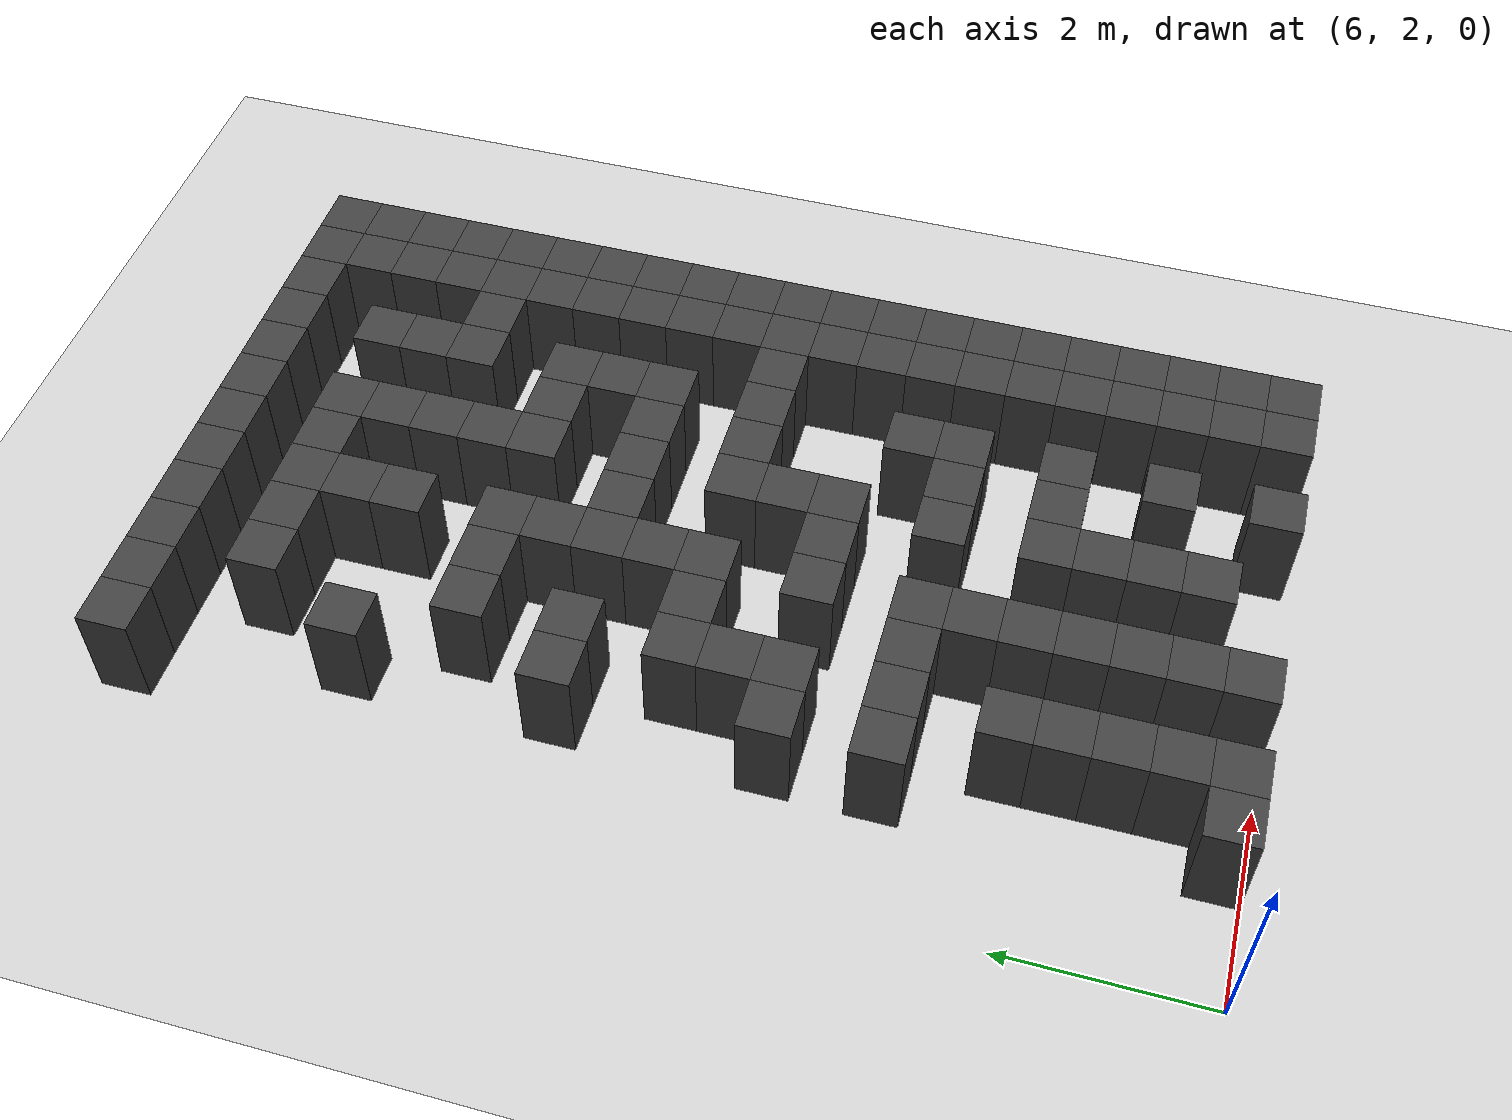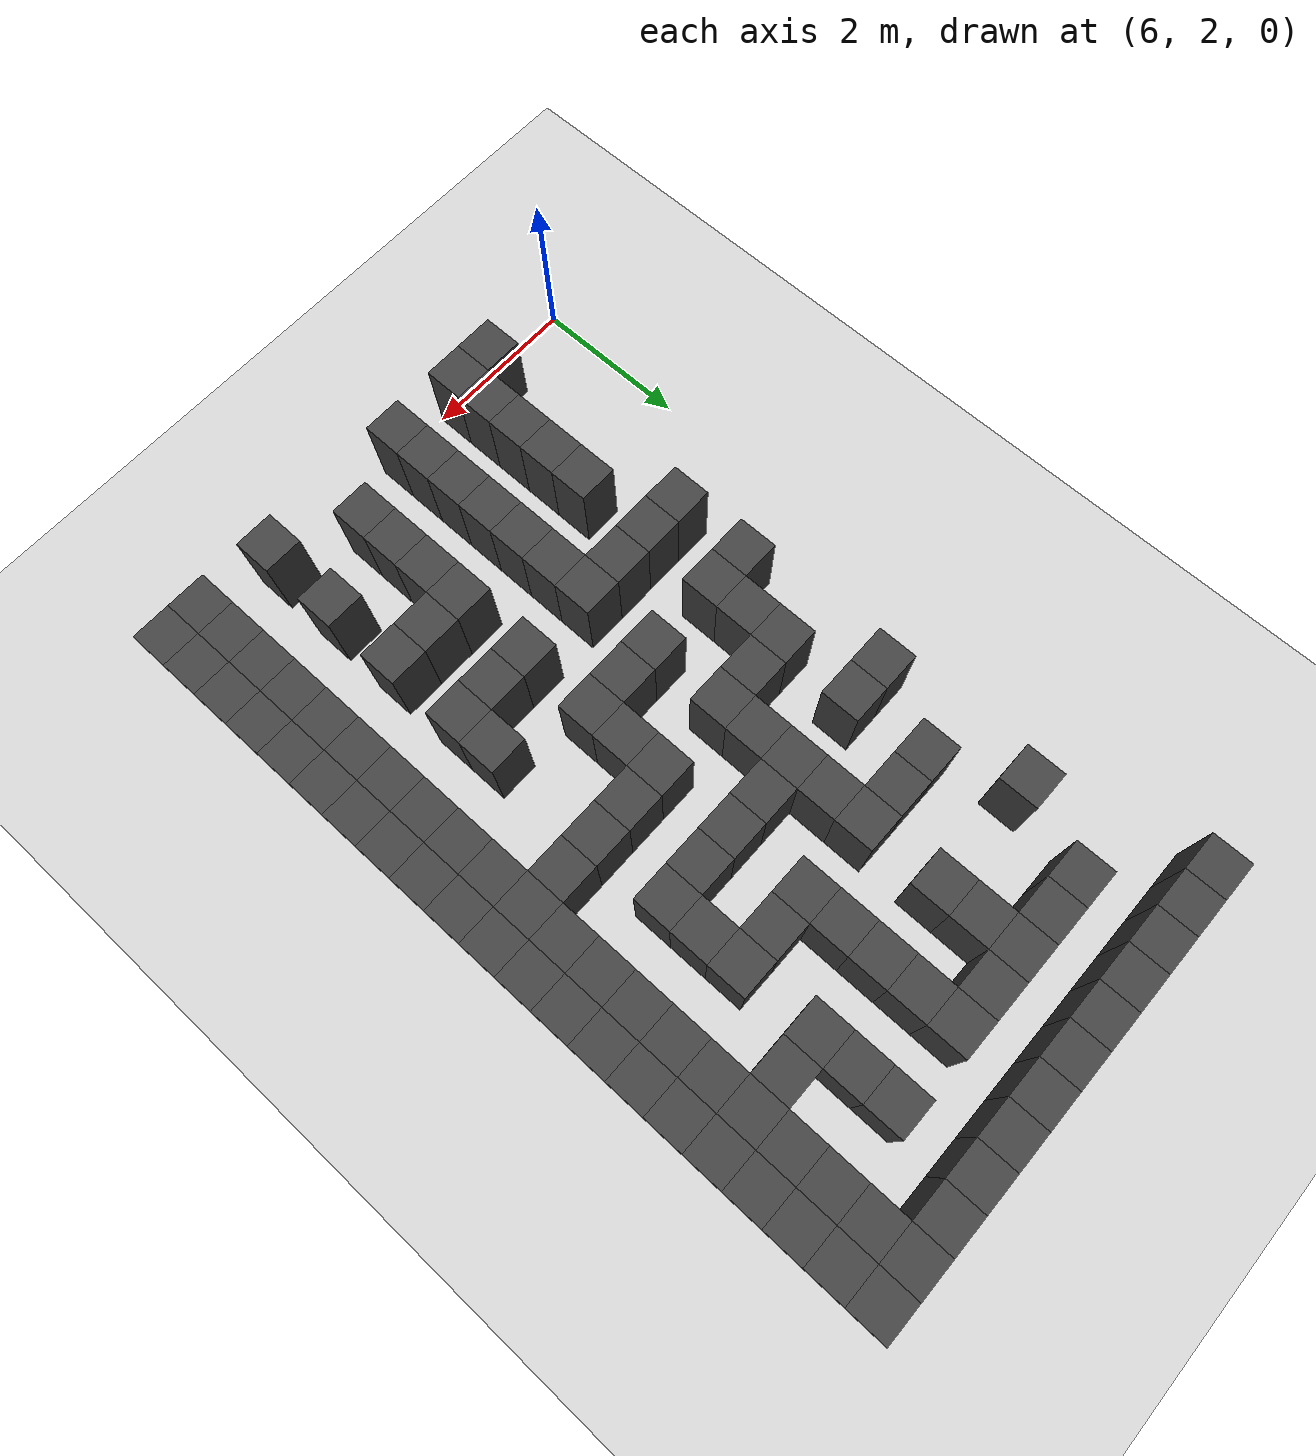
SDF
<sdf version="1.7">
 <world name="map_16668">
  <model name="ground_plane">
   <static>true</static>
   <link name="link">
    <collision name="collision">
     <geometry><plane><normal>0 0 1</normal><size>200 200</size></plane></geometry>
    </collision>
    <visual name="visual">
     <geometry><plane><normal>0 0 1</normal><size>200 200</size></plane></geometry>
     <material><ambient>0.8 0.8 0.8 1</ambient><diffuse>0.8 0.8 0.8 1</diffuse></material>
    </visual>
   </link>
  </model>
  <model name="maze_environment">
   <static>true</static>
   <link name="wall_38">
    <pose>6.750 12.250 0.500 0 0 0</pose>
    <collision name="col"><geometry><box><size>0.5 0.5 1.0</size></box></geometry></collision>
    <visual name="vis">
     <geometry><box><size>0.5 0.5 1.0</size></box></geometry>
     <material><ambient>0.15 0.15 0.15 1</ambient><diffuse>0.25 0.25 0.25 1</diffuse></material>
    </visual>
   </link>
   <link name="wall_39">
    <pose>7.250 12.250 0.500 0 0 0</pose>
    <collision name="col"><geometry><box><size>0.5 0.5 1.0</size></box></geometry></collision>
    <visual name="vis">
     <geometry><box><size>0.5 0.5 1.0</size></box></geometry>
     <material><ambient>0.15 0.15 0.15 1</ambient><diffuse>0.25 0.25 0.25 1</diffuse></material>
    </visual>
   </link>
   <link name="wall_40">
    <pose>7.750 12.250 0.500 0 0 0</pose>
    <collision name="col"><geometry><box><size>0.5 0.5 1.0</size></box></geometry></collision>
    <visual name="vis">
     <geometry><box><size>0.5 0.5 1.0</size></box></geometry>
     <material><ambient>0.15 0.15 0.15 1</ambient><diffuse>0.25 0.25 0.25 1</diffuse></material>
    </visual>
   </link>
   <link name="wall_41">
    <pose>8.250 12.250 0.500 0 0 0</pose>
    <collision name="col"><geometry><box><size>0.5 0.5 1.0</size></box></geometry></collision>
    <visual name="vis">
     <geometry><box><size>0.5 0.5 1.0</size></box></geometry>
     <material><ambient>0.15 0.15 0.15 1</ambient><diffuse>0.25 0.25 0.25 1</diffuse></material>
    </visual>
   </link>
   <link name="wall_42">
    <pose>8.750 12.250 0.500 0 0 0</pose>
    <collision name="col"><geometry><box><size>0.5 0.5 1.0</size></box></geometry></collision>
    <visual name="vis">
     <geometry><box><size>0.5 0.5 1.0</size></box></geometry>
     <material><ambient>0.15 0.15 0.15 1</ambient><diffuse>0.25 0.25 0.25 1</diffuse></material>
    </visual>
   </link>
   <link name="wall_43">
    <pose>9.250 12.250 0.500 0 0 0</pose>
    <collision name="col"><geometry><box><size>0.5 0.5 1.0</size></box></geometry></collision>
    <visual name="vis">
     <geometry><box><size>0.5 0.5 1.0</size></box></geometry>
     <material><ambient>0.15 0.15 0.15 1</ambient><diffuse>0.25 0.25 0.25 1</diffuse></material>
    </visual>
   </link>
   <link name="wall_44">
    <pose>9.750 12.250 0.500 0 0 0</pose>
    <collision name="col"><geometry><box><size>0.5 0.5 1.0</size></box></geometry></collision>
    <visual name="vis">
     <geometry><box><size>0.5 0.5 1.0</size></box></geometry>
     <material><ambient>0.15 0.15 0.15 1</ambient><diffuse>0.25 0.25 0.25 1</diffuse></material>
    </visual>
   </link>
   <link name="wall_45">
    <pose>10.250 12.250 0.500 0 0 0</pose>
    <collision name="col"><geometry><box><size>0.5 0.5 1.0</size></box></geometry></collision>
    <visual name="vis">
     <geometry><box><size>0.5 0.5 1.0</size></box></geometry>
     <material><ambient>0.15 0.15 0.15 1</ambient><diffuse>0.25 0.25 0.25 1</diffuse></material>
    </visual>
   </link>
   <link name="wall_46">
    <pose>10.750 12.250 0.500 0 0 0</pose>
    <collision name="col"><geometry><box><size>0.5 0.5 1.0</size></box></geometry></collision>
    <visual name="vis">
     <geometry><box><size>0.5 0.5 1.0</size></box></geometry>
     <material><ambient>0.15 0.15 0.15 1</ambient><diffuse>0.25 0.25 0.25 1</diffuse></material>
    </visual>
   </link>
   <link name="wall_47">
    <pose>11.250 12.250 0.500 0 0 0</pose>
    <collision name="col"><geometry><box><size>0.5 0.5 1.0</size></box></geometry></collision>
    <visual name="vis">
     <geometry><box><size>0.5 0.5 1.0</size></box></geometry>
     <material><ambient>0.15 0.15 0.15 1</ambient><diffuse>0.25 0.25 0.25 1</diffuse></material>
    </visual>
   </link>
   <link name="wall_48">
    <pose>11.750 12.250 0.500 0 0 0</pose>
    <collision name="col"><geometry><box><size>0.5 0.5 1.0</size></box></geometry></collision>
    <visual name="vis">
     <geometry><box><size>0.5 0.5 1.0</size></box></geometry>
     <material><ambient>0.15 0.15 0.15 1</ambient><diffuse>0.25 0.25 0.25 1</diffuse></material>
    </visual>
   </link>
   <link name="wall_49">
    <pose>12.250 12.250 0.500 0 0 0</pose>
    <collision name="col"><geometry><box><size>0.5 0.5 1.0</size></box></geometry></collision>
    <visual name="vis">
     <geometry><box><size>0.5 0.5 1.0</size></box></geometry>
     <material><ambient>0.15 0.15 0.15 1</ambient><diffuse>0.25 0.25 0.25 1</diffuse></material>
    </visual>
   </link>
   <link name="wall_55">
    <pose>11.750 11.750 0.500 0 0 0</pose>
    <collision name="col"><geometry><box><size>0.5 0.5 1.0</size></box></geometry></collision>
    <visual name="vis">
     <geometry><box><size>0.5 0.5 1.0</size></box></geometry>
     <material><ambient>0.15 0.15 0.15 1</ambient><diffuse>0.25 0.25 0.25 1</diffuse></material>
    </visual>
   </link>
   <link name="wall_56">
    <pose>12.250 11.750 0.500 0 0 0</pose>
    <collision name="col"><geometry><box><size>0.5 0.5 1.0</size></box></geometry></collision>
    <visual name="vis">
     <geometry><box><size>0.5 0.5 1.0</size></box></geometry>
     <material><ambient>0.15 0.15 0.15 1</ambient><diffuse>0.25 0.25 0.25 1</diffuse></material>
    </visual>
   </link>
   <link name="wall_86">
    <pose>7.750 11.250 0.500 0 0 0</pose>
    <collision name="col"><geometry><box><size>0.5 0.5 1.0</size></box></geometry></collision>
    <visual name="vis">
     <geometry><box><size>0.5 0.5 1.0</size></box></geometry>
     <material><ambient>0.15 0.15 0.15 1</ambient><diffuse>0.25 0.25 0.25 1</diffuse></material>
    </visual>
   </link>
   <link name="wall_87">
    <pose>8.250 11.250 0.500 0 0 0</pose>
    <collision name="col"><geometry><box><size>0.5 0.5 1.0</size></box></geometry></collision>
    <visual name="vis">
     <geometry><box><size>0.5 0.5 1.0</size></box></geometry>
     <material><ambient>0.15 0.15 0.15 1</ambient><diffuse>0.25 0.25 0.25 1</diffuse></material>
    </visual>
   </link>
   <link name="wall_88">
    <pose>8.750 11.250 0.500 0 0 0</pose>
    <collision name="col"><geometry><box><size>0.5 0.5 1.0</size></box></geometry></collision>
    <visual name="vis">
     <geometry><box><size>0.5 0.5 1.0</size></box></geometry>
     <material><ambient>0.15 0.15 0.15 1</ambient><diffuse>0.25 0.25 0.25 1</diffuse></material>
    </visual>
   </link>
   <link name="wall_89">
    <pose>9.250 11.250 0.500 0 0 0</pose>
    <collision name="col"><geometry><box><size>0.5 0.5 1.0</size></box></geometry></collision>
    <visual name="vis">
     <geometry><box><size>0.5 0.5 1.0</size></box></geometry>
     <material><ambient>0.15 0.15 0.15 1</ambient><diffuse>0.25 0.25 0.25 1</diffuse></material>
    </visual>
   </link>
   <link name="wall_90">
    <pose>9.750 11.250 0.500 0 0 0</pose>
    <collision name="col"><geometry><box><size>0.5 0.5 1.0</size></box></geometry></collision>
    <visual name="vis">
     <geometry><box><size>0.5 0.5 1.0</size></box></geometry>
     <material><ambient>0.15 0.15 0.15 1</ambient><diffuse>0.25 0.25 0.25 1</diffuse></material>
    </visual>
   </link>
   <link name="wall_91">
    <pose>10.750 11.250 0.500 0 0 0</pose>
    <collision name="col"><geometry><box><size>0.5 0.5 1.0</size></box></geometry></collision>
    <visual name="vis">
     <geometry><box><size>0.5 0.5 1.0</size></box></geometry>
     <material><ambient>0.15 0.15 0.15 1</ambient><diffuse>0.25 0.25 0.25 1</diffuse></material>
    </visual>
   </link>
   <link name="wall_92">
    <pose>11.750 11.250 0.500 0 0 0</pose>
    <collision name="col"><geometry><box><size>0.5 0.5 1.0</size></box></geometry></collision>
    <visual name="vis">
     <geometry><box><size>0.5 0.5 1.0</size></box></geometry>
     <material><ambient>0.15 0.15 0.15 1</ambient><diffuse>0.25 0.25 0.25 1</diffuse></material>
    </visual>
   </link>
   <link name="wall_93">
    <pose>12.250 11.250 0.500 0 0 0</pose>
    <collision name="col"><geometry><box><size>0.5 0.5 1.0</size></box></geometry></collision>
    <visual name="vis">
     <geometry><box><size>0.5 0.5 1.0</size></box></geometry>
     <material><ambient>0.15 0.15 0.15 1</ambient><diffuse>0.25 0.25 0.25 1</diffuse></material>
    </visual>
   </link>
   <link name="wall_104">
    <pose>8.750 10.750 0.500 0 0 0</pose>
    <collision name="col"><geometry><box><size>0.5 0.5 1.0</size></box></geometry></collision>
    <visual name="vis">
     <geometry><box><size>0.5 0.5 1.0</size></box></geometry>
     <material><ambient>0.15 0.15 0.15 1</ambient><diffuse>0.25 0.25 0.25 1</diffuse></material>
    </visual>
   </link>
   <link name="wall_105">
    <pose>9.750 10.750 0.500 0 0 0</pose>
    <collision name="col"><geometry><box><size>0.5 0.5 1.0</size></box></geometry></collision>
    <visual name="vis">
     <geometry><box><size>0.5 0.5 1.0</size></box></geometry>
     <material><ambient>0.15 0.15 0.15 1</ambient><diffuse>0.25 0.25 0.25 1</diffuse></material>
    </visual>
   </link>
   <link name="wall_106">
    <pose>10.750 10.750 0.500 0 0 0</pose>
    <collision name="col"><geometry><box><size>0.5 0.5 1.0</size></box></geometry></collision>
    <visual name="vis">
     <geometry><box><size>0.5 0.5 1.0</size></box></geometry>
     <material><ambient>0.15 0.15 0.15 1</ambient><diffuse>0.25 0.25 0.25 1</diffuse></material>
    </visual>
   </link>
   <link name="wall_107">
    <pose>11.750 10.750 0.500 0 0 0</pose>
    <collision name="col"><geometry><box><size>0.5 0.5 1.0</size></box></geometry></collision>
    <visual name="vis">
     <geometry><box><size>0.5 0.5 1.0</size></box></geometry>
     <material><ambient>0.15 0.15 0.15 1</ambient><diffuse>0.25 0.25 0.25 1</diffuse></material>
    </visual>
   </link>
   <link name="wall_108">
    <pose>12.250 10.750 0.500 0 0 0</pose>
    <collision name="col"><geometry><box><size>0.5 0.5 1.0</size></box></geometry></collision>
    <visual name="vis">
     <geometry><box><size>0.5 0.5 1.0</size></box></geometry>
     <material><ambient>0.15 0.15 0.15 1</ambient><diffuse>0.25 0.25 0.25 1</diffuse></material>
    </visual>
   </link>
   <link name="wall_135">
    <pose>7.250 10.250 0.500 0 0 0</pose>
    <collision name="col"><geometry><box><size>0.5 0.5 1.0</size></box></geometry></collision>
    <visual name="vis">
     <geometry><box><size>0.5 0.5 1.0</size></box></geometry>
     <material><ambient>0.15 0.15 0.15 1</ambient><diffuse>0.25 0.25 0.25 1</diffuse></material>
    </visual>
   </link>
   <link name="wall_136">
    <pose>8.750 10.250 0.500 0 0 0</pose>
    <collision name="col"><geometry><box><size>0.5 0.5 1.0</size></box></geometry></collision>
    <visual name="vis">
     <geometry><box><size>0.5 0.5 1.0</size></box></geometry>
     <material><ambient>0.15 0.15 0.15 1</ambient><diffuse>0.25 0.25 0.25 1</diffuse></material>
    </visual>
   </link>
   <link name="wall_137">
    <pose>9.750 10.250 0.500 0 0 0</pose>
    <collision name="col"><geometry><box><size>0.5 0.5 1.0</size></box></geometry></collision>
    <visual name="vis">
     <geometry><box><size>0.5 0.5 1.0</size></box></geometry>
     <material><ambient>0.15 0.15 0.15 1</ambient><diffuse>0.25 0.25 0.25 1</diffuse></material>
    </visual>
   </link>
   <link name="wall_138">
    <pose>10.750 10.250 0.500 0 0 0</pose>
    <collision name="col"><geometry><box><size>0.5 0.5 1.0</size></box></geometry></collision>
    <visual name="vis">
     <geometry><box><size>0.5 0.5 1.0</size></box></geometry>
     <material><ambient>0.15 0.15 0.15 1</ambient><diffuse>0.25 0.25 0.25 1</diffuse></material>
    </visual>
   </link>
   <link name="wall_139">
    <pose>11.250 10.250 0.500 0 0 0</pose>
    <collision name="col"><geometry><box><size>0.5 0.5 1.0</size></box></geometry></collision>
    <visual name="vis">
     <geometry><box><size>0.5 0.5 1.0</size></box></geometry>
     <material><ambient>0.15 0.15 0.15 1</ambient><diffuse>0.25 0.25 0.25 1</diffuse></material>
    </visual>
   </link>
   <link name="wall_140">
    <pose>11.750 10.250 0.500 0 0 0</pose>
    <collision name="col"><geometry><box><size>0.5 0.5 1.0</size></box></geometry></collision>
    <visual name="vis">
     <geometry><box><size>0.5 0.5 1.0</size></box></geometry>
     <material><ambient>0.15 0.15 0.15 1</ambient><diffuse>0.25 0.25 0.25 1</diffuse></material>
    </visual>
   </link>
   <link name="wall_141">
    <pose>12.250 10.250 0.500 0 0 0</pose>
    <collision name="col"><geometry><box><size>0.5 0.5 1.0</size></box></geometry></collision>
    <visual name="vis">
     <geometry><box><size>0.5 0.5 1.0</size></box></geometry>
     <material><ambient>0.15 0.15 0.15 1</ambient><diffuse>0.25 0.25 0.25 1</diffuse></material>
    </visual>
   </link>
   <link name="wall_151">
    <pose>9.750 9.750 0.500 0 0 0</pose>
    <collision name="col"><geometry><box><size>0.5 0.5 1.0</size></box></geometry></collision>
    <visual name="vis">
     <geometry><box><size>0.5 0.5 1.0</size></box></geometry>
     <material><ambient>0.15 0.15 0.15 1</ambient><diffuse>0.25 0.25 0.25 1</diffuse></material>
    </visual>
   </link>
   <link name="wall_152">
    <pose>11.750 9.750 0.500 0 0 0</pose>
    <collision name="col"><geometry><box><size>0.5 0.5 1.0</size></box></geometry></collision>
    <visual name="vis">
     <geometry><box><size>0.5 0.5 1.0</size></box></geometry>
     <material><ambient>0.15 0.15 0.15 1</ambient><diffuse>0.25 0.25 0.25 1</diffuse></material>
    </visual>
   </link>
   <link name="wall_153">
    <pose>12.250 9.750 0.500 0 0 0</pose>
    <collision name="col"><geometry><box><size>0.5 0.5 1.0</size></box></geometry></collision>
    <visual name="vis">
     <geometry><box><size>0.5 0.5 1.0</size></box></geometry>
     <material><ambient>0.15 0.15 0.15 1</ambient><diffuse>0.25 0.25 0.25 1</diffuse></material>
    </visual>
   </link>
   <link name="wall_181">
    <pose>7.750 9.250 0.500 0 0 0</pose>
    <collision name="col"><geometry><box><size>0.5 0.5 1.0</size></box></geometry></collision>
    <visual name="vis">
     <geometry><box><size>0.5 0.5 1.0</size></box></geometry>
     <material><ambient>0.15 0.15 0.15 1</ambient><diffuse>0.25 0.25 0.25 1</diffuse></material>
    </visual>
   </link>
   <link name="wall_182">
    <pose>8.250 9.250 0.500 0 0 0</pose>
    <collision name="col"><geometry><box><size>0.5 0.5 1.0</size></box></geometry></collision>
    <visual name="vis">
     <geometry><box><size>0.5 0.5 1.0</size></box></geometry>
     <material><ambient>0.15 0.15 0.15 1</ambient><diffuse>0.25 0.25 0.25 1</diffuse></material>
    </visual>
   </link>
   <link name="wall_183">
    <pose>8.750 9.250 0.500 0 0 0</pose>
    <collision name="col"><geometry><box><size>0.5 0.5 1.0</size></box></geometry></collision>
    <visual name="vis">
     <geometry><box><size>0.5 0.5 1.0</size></box></geometry>
     <material><ambient>0.15 0.15 0.15 1</ambient><diffuse>0.25 0.25 0.25 1</diffuse></material>
    </visual>
   </link>
   <link name="wall_184">
    <pose>9.750 9.250 0.500 0 0 0</pose>
    <collision name="col"><geometry><box><size>0.5 0.5 1.0</size></box></geometry></collision>
    <visual name="vis">
     <geometry><box><size>0.5 0.5 1.0</size></box></geometry>
     <material><ambient>0.15 0.15 0.15 1</ambient><diffuse>0.25 0.25 0.25 1</diffuse></material>
    </visual>
   </link>
   <link name="wall_185">
    <pose>10.250 9.250 0.500 0 0 0</pose>
    <collision name="col"><geometry><box><size>0.5 0.5 1.0</size></box></geometry></collision>
    <visual name="vis">
     <geometry><box><size>0.5 0.5 1.0</size></box></geometry>
     <material><ambient>0.15 0.15 0.15 1</ambient><diffuse>0.25 0.25 0.25 1</diffuse></material>
    </visual>
   </link>
   <link name="wall_186">
    <pose>10.750 9.250 0.500 0 0 0</pose>
    <collision name="col"><geometry><box><size>0.5 0.5 1.0</size></box></geometry></collision>
    <visual name="vis">
     <geometry><box><size>0.5 0.5 1.0</size></box></geometry>
     <material><ambient>0.15 0.15 0.15 1</ambient><diffuse>0.25 0.25 0.25 1</diffuse></material>
    </visual>
   </link>
   <link name="wall_187">
    <pose>11.750 9.250 0.500 0 0 0</pose>
    <collision name="col"><geometry><box><size>0.5 0.5 1.0</size></box></geometry></collision>
    <visual name="vis">
     <geometry><box><size>0.5 0.5 1.0</size></box></geometry>
     <material><ambient>0.15 0.15 0.15 1</ambient><diffuse>0.25 0.25 0.25 1</diffuse></material>
    </visual>
   </link>
   <link name="wall_188">
    <pose>12.250 9.250 0.500 0 0 0</pose>
    <collision name="col"><geometry><box><size>0.5 0.5 1.0</size></box></geometry></collision>
    <visual name="vis">
     <geometry><box><size>0.5 0.5 1.0</size></box></geometry>
     <material><ambient>0.15 0.15 0.15 1</ambient><diffuse>0.25 0.25 0.25 1</diffuse></material>
    </visual>
   </link>
   <link name="wall_199">
    <pose>8.750 8.750 0.500 0 0 0</pose>
    <collision name="col"><geometry><box><size>0.5 0.5 1.0</size></box></geometry></collision>
    <visual name="vis">
     <geometry><box><size>0.5 0.5 1.0</size></box></geometry>
     <material><ambient>0.15 0.15 0.15 1</ambient><diffuse>0.25 0.25 0.25 1</diffuse></material>
    </visual>
   </link>
   <link name="wall_200">
    <pose>10.750 8.750 0.500 0 0 0</pose>
    <collision name="col"><geometry><box><size>0.5 0.5 1.0</size></box></geometry></collision>
    <visual name="vis">
     <geometry><box><size>0.5 0.5 1.0</size></box></geometry>
     <material><ambient>0.15 0.15 0.15 1</ambient><diffuse>0.25 0.25 0.25 1</diffuse></material>
    </visual>
   </link>
   <link name="wall_201">
    <pose>11.750 8.750 0.500 0 0 0</pose>
    <collision name="col"><geometry><box><size>0.5 0.5 1.0</size></box></geometry></collision>
    <visual name="vis">
     <geometry><box><size>0.5 0.5 1.0</size></box></geometry>
     <material><ambient>0.15 0.15 0.15 1</ambient><diffuse>0.25 0.25 0.25 1</diffuse></material>
    </visual>
   </link>
   <link name="wall_202">
    <pose>12.250 8.750 0.500 0 0 0</pose>
    <collision name="col"><geometry><box><size>0.5 0.5 1.0</size></box></geometry></collision>
    <visual name="vis">
     <geometry><box><size>0.5 0.5 1.0</size></box></geometry>
     <material><ambient>0.15 0.15 0.15 1</ambient><diffuse>0.25 0.25 0.25 1</diffuse></material>
    </visual>
   </link>
   <link name="wall_225">
    <pose>7.250 8.250 0.500 0 0 0</pose>
    <collision name="col"><geometry><box><size>0.5 0.5 1.0</size></box></geometry></collision>
    <visual name="vis">
     <geometry><box><size>0.5 0.5 1.0</size></box></geometry>
     <material><ambient>0.15 0.15 0.15 1</ambient><diffuse>0.25 0.25 0.25 1</diffuse></material>
    </visual>
   </link>
   <link name="wall_226">
    <pose>7.750 8.250 0.500 0 0 0</pose>
    <collision name="col"><geometry><box><size>0.5 0.5 1.0</size></box></geometry></collision>
    <visual name="vis">
     <geometry><box><size>0.5 0.5 1.0</size></box></geometry>
     <material><ambient>0.15 0.15 0.15 1</ambient><diffuse>0.25 0.25 0.25 1</diffuse></material>
    </visual>
   </link>
   <link name="wall_227">
    <pose>8.750 8.250 0.500 0 0 0</pose>
    <collision name="col"><geometry><box><size>0.5 0.5 1.0</size></box></geometry></collision>
    <visual name="vis">
     <geometry><box><size>0.5 0.5 1.0</size></box></geometry>
     <material><ambient>0.15 0.15 0.15 1</ambient><diffuse>0.25 0.25 0.25 1</diffuse></material>
    </visual>
   </link>
   <link name="wall_228">
    <pose>9.250 8.250 0.500 0 0 0</pose>
    <collision name="col"><geometry><box><size>0.5 0.5 1.0</size></box></geometry></collision>
    <visual name="vis">
     <geometry><box><size>0.5 0.5 1.0</size></box></geometry>
     <material><ambient>0.15 0.15 0.15 1</ambient><diffuse>0.25 0.25 0.25 1</diffuse></material>
    </visual>
   </link>
   <link name="wall_229">
    <pose>9.750 8.250 0.500 0 0 0</pose>
    <collision name="col"><geometry><box><size>0.5 0.5 1.0</size></box></geometry></collision>
    <visual name="vis">
     <geometry><box><size>0.5 0.5 1.0</size></box></geometry>
     <material><ambient>0.15 0.15 0.15 1</ambient><diffuse>0.25 0.25 0.25 1</diffuse></material>
    </visual>
   </link>
   <link name="wall_230">
    <pose>10.250 8.250 0.500 0 0 0</pose>
    <collision name="col"><geometry><box><size>0.5 0.5 1.0</size></box></geometry></collision>
    <visual name="vis">
     <geometry><box><size>0.5 0.5 1.0</size></box></geometry>
     <material><ambient>0.15 0.15 0.15 1</ambient><diffuse>0.25 0.25 0.25 1</diffuse></material>
    </visual>
   </link>
   <link name="wall_231">
    <pose>10.750 8.250 0.500 0 0 0</pose>
    <collision name="col"><geometry><box><size>0.5 0.5 1.0</size></box></geometry></collision>
    <visual name="vis">
     <geometry><box><size>0.5 0.5 1.0</size></box></geometry>
     <material><ambient>0.15 0.15 0.15 1</ambient><diffuse>0.25 0.25 0.25 1</diffuse></material>
    </visual>
   </link>
   <link name="wall_232">
    <pose>11.750 8.250 0.500 0 0 0</pose>
    <collision name="col"><geometry><box><size>0.5 0.5 1.0</size></box></geometry></collision>
    <visual name="vis">
     <geometry><box><size>0.5 0.5 1.0</size></box></geometry>
     <material><ambient>0.15 0.15 0.15 1</ambient><diffuse>0.25 0.25 0.25 1</diffuse></material>
    </visual>
   </link>
   <link name="wall_233">
    <pose>12.250 8.250 0.500 0 0 0</pose>
    <collision name="col"><geometry><box><size>0.5 0.5 1.0</size></box></geometry></collision>
    <visual name="vis">
     <geometry><box><size>0.5 0.5 1.0</size></box></geometry>
     <material><ambient>0.15 0.15 0.15 1</ambient><diffuse>0.25 0.25 0.25 1</diffuse></material>
    </visual>
   </link>
   <link name="wall_247">
    <pose>8.750 7.750 0.500 0 0 0</pose>
    <collision name="col"><geometry><box><size>0.5 0.5 1.0</size></box></geometry></collision>
    <visual name="vis">
     <geometry><box><size>0.5 0.5 1.0</size></box></geometry>
     <material><ambient>0.15 0.15 0.15 1</ambient><diffuse>0.25 0.25 0.25 1</diffuse></material>
    </visual>
   </link>
   <link name="wall_248">
    <pose>11.750 7.750 0.500 0 0 0</pose>
    <collision name="col"><geometry><box><size>0.5 0.5 1.0</size></box></geometry></collision>
    <visual name="vis">
     <geometry><box><size>0.5 0.5 1.0</size></box></geometry>
     <material><ambient>0.15 0.15 0.15 1</ambient><diffuse>0.25 0.25 0.25 1</diffuse></material>
    </visual>
   </link>
   <link name="wall_249">
    <pose>12.250 7.750 0.500 0 0 0</pose>
    <collision name="col"><geometry><box><size>0.5 0.5 1.0</size></box></geometry></collision>
    <visual name="vis">
     <geometry><box><size>0.5 0.5 1.0</size></box></geometry>
     <material><ambient>0.15 0.15 0.15 1</ambient><diffuse>0.25 0.25 0.25 1</diffuse></material>
    </visual>
   </link>
   <link name="wall_274">
    <pose>7.750 7.250 0.500 0 0 0</pose>
    <collision name="col"><geometry><box><size>0.5 0.5 1.0</size></box></geometry></collision>
    <visual name="vis">
     <geometry><box><size>0.5 0.5 1.0</size></box></geometry>
     <material><ambient>0.15 0.15 0.15 1</ambient><diffuse>0.25 0.25 0.25 1</diffuse></material>
    </visual>
   </link>
   <link name="wall_275">
    <pose>8.250 7.250 0.500 0 0 0</pose>
    <collision name="col"><geometry><box><size>0.5 0.5 1.0</size></box></geometry></collision>
    <visual name="vis">
     <geometry><box><size>0.5 0.5 1.0</size></box></geometry>
     <material><ambient>0.15 0.15 0.15 1</ambient><diffuse>0.25 0.25 0.25 1</diffuse></material>
    </visual>
   </link>
   <link name="wall_276">
    <pose>8.750 7.250 0.500 0 0 0</pose>
    <collision name="col"><geometry><box><size>0.5 0.5 1.0</size></box></geometry></collision>
    <visual name="vis">
     <geometry><box><size>0.5 0.5 1.0</size></box></geometry>
     <material><ambient>0.15 0.15 0.15 1</ambient><diffuse>0.25 0.25 0.25 1</diffuse></material>
    </visual>
   </link>
   <link name="wall_277">
    <pose>9.750 7.250 0.500 0 0 0</pose>
    <collision name="col"><geometry><box><size>0.5 0.5 1.0</size></box></geometry></collision>
    <visual name="vis">
     <geometry><box><size>0.5 0.5 1.0</size></box></geometry>
     <material><ambient>0.15 0.15 0.15 1</ambient><diffuse>0.25 0.25 0.25 1</diffuse></material>
    </visual>
   </link>
   <link name="wall_278">
    <pose>10.250 7.250 0.500 0 0 0</pose>
    <collision name="col"><geometry><box><size>0.5 0.5 1.0</size></box></geometry></collision>
    <visual name="vis">
     <geometry><box><size>0.5 0.5 1.0</size></box></geometry>
     <material><ambient>0.15 0.15 0.15 1</ambient><diffuse>0.25 0.25 0.25 1</diffuse></material>
    </visual>
   </link>
   <link name="wall_279">
    <pose>10.750 7.250 0.500 0 0 0</pose>
    <collision name="col"><geometry><box><size>0.5 0.5 1.0</size></box></geometry></collision>
    <visual name="vis">
     <geometry><box><size>0.5 0.5 1.0</size></box></geometry>
     <material><ambient>0.15 0.15 0.15 1</ambient><diffuse>0.25 0.25 0.25 1</diffuse></material>
    </visual>
   </link>
   <link name="wall_280">
    <pose>11.250 7.250 0.500 0 0 0</pose>
    <collision name="col"><geometry><box><size>0.5 0.5 1.0</size></box></geometry></collision>
    <visual name="vis">
     <geometry><box><size>0.5 0.5 1.0</size></box></geometry>
     <material><ambient>0.15 0.15 0.15 1</ambient><diffuse>0.25 0.25 0.25 1</diffuse></material>
    </visual>
   </link>
   <link name="wall_281">
    <pose>11.750 7.250 0.500 0 0 0</pose>
    <collision name="col"><geometry><box><size>0.5 0.5 1.0</size></box></geometry></collision>
    <visual name="vis">
     <geometry><box><size>0.5 0.5 1.0</size></box></geometry>
     <material><ambient>0.15 0.15 0.15 1</ambient><diffuse>0.25 0.25 0.25 1</diffuse></material>
    </visual>
   </link>
   <link name="wall_282">
    <pose>12.250 7.250 0.500 0 0 0</pose>
    <collision name="col"><geometry><box><size>0.5 0.5 1.0</size></box></geometry></collision>
    <visual name="vis">
     <geometry><box><size>0.5 0.5 1.0</size></box></geometry>
     <material><ambient>0.15 0.15 0.15 1</ambient><diffuse>0.25 0.25 0.25 1</diffuse></material>
    </visual>
   </link>
   <link name="wall_293">
    <pose>7.750 6.750 0.500 0 0 0</pose>
    <collision name="col"><geometry><box><size>0.5 0.5 1.0</size></box></geometry></collision>
    <visual name="vis">
     <geometry><box><size>0.5 0.5 1.0</size></box></geometry>
     <material><ambient>0.15 0.15 0.15 1</ambient><diffuse>0.25 0.25 0.25 1</diffuse></material>
    </visual>
   </link>
   <link name="wall_294">
    <pose>9.750 6.750 0.500 0 0 0</pose>
    <collision name="col"><geometry><box><size>0.5 0.5 1.0</size></box></geometry></collision>
    <visual name="vis">
     <geometry><box><size>0.5 0.5 1.0</size></box></geometry>
     <material><ambient>0.15 0.15 0.15 1</ambient><diffuse>0.25 0.25 0.25 1</diffuse></material>
    </visual>
   </link>
   <link name="wall_295">
    <pose>11.750 6.750 0.500 0 0 0</pose>
    <collision name="col"><geometry><box><size>0.5 0.5 1.0</size></box></geometry></collision>
    <visual name="vis">
     <geometry><box><size>0.5 0.5 1.0</size></box></geometry>
     <material><ambient>0.15 0.15 0.15 1</ambient><diffuse>0.25 0.25 0.25 1</diffuse></material>
    </visual>
   </link>
   <link name="wall_296">
    <pose>12.250 6.750 0.500 0 0 0</pose>
    <collision name="col"><geometry><box><size>0.5 0.5 1.0</size></box></geometry></collision>
    <visual name="vis">
     <geometry><box><size>0.5 0.5 1.0</size></box></geometry>
     <material><ambient>0.15 0.15 0.15 1</ambient><diffuse>0.25 0.25 0.25 1</diffuse></material>
    </visual>
   </link>
   <link name="wall_322">
    <pose>7.250 6.250 0.500 0 0 0</pose>
    <collision name="col"><geometry><box><size>0.5 0.5 1.0</size></box></geometry></collision>
    <visual name="vis">
     <geometry><box><size>0.5 0.5 1.0</size></box></geometry>
     <material><ambient>0.15 0.15 0.15 1</ambient><diffuse>0.25 0.25 0.25 1</diffuse></material>
    </visual>
   </link>
   <link name="wall_323">
    <pose>7.750 6.250 0.500 0 0 0</pose>
    <collision name="col"><geometry><box><size>0.5 0.5 1.0</size></box></geometry></collision>
    <visual name="vis">
     <geometry><box><size>0.5 0.5 1.0</size></box></geometry>
     <material><ambient>0.15 0.15 0.15 1</ambient><diffuse>0.25 0.25 0.25 1</diffuse></material>
    </visual>
   </link>
   <link name="wall_324">
    <pose>8.750 6.250 0.500 0 0 0</pose>
    <collision name="col"><geometry><box><size>0.5 0.5 1.0</size></box></geometry></collision>
    <visual name="vis">
     <geometry><box><size>0.5 0.5 1.0</size></box></geometry>
     <material><ambient>0.15 0.15 0.15 1</ambient><diffuse>0.25 0.25 0.25 1</diffuse></material>
    </visual>
   </link>
   <link name="wall_325">
    <pose>9.250 6.250 0.500 0 0 0</pose>
    <collision name="col"><geometry><box><size>0.5 0.5 1.0</size></box></geometry></collision>
    <visual name="vis">
     <geometry><box><size>0.5 0.5 1.0</size></box></geometry>
     <material><ambient>0.15 0.15 0.15 1</ambient><diffuse>0.25 0.25 0.25 1</diffuse></material>
    </visual>
   </link>
   <link name="wall_326">
    <pose>9.750 6.250 0.500 0 0 0</pose>
    <collision name="col"><geometry><box><size>0.5 0.5 1.0</size></box></geometry></collision>
    <visual name="vis">
     <geometry><box><size>0.5 0.5 1.0</size></box></geometry>
     <material><ambient>0.15 0.15 0.15 1</ambient><diffuse>0.25 0.25 0.25 1</diffuse></material>
    </visual>
   </link>
   <link name="wall_327">
    <pose>11.750 6.250 0.500 0 0 0</pose>
    <collision name="col"><geometry><box><size>0.5 0.5 1.0</size></box></geometry></collision>
    <visual name="vis">
     <geometry><box><size>0.5 0.5 1.0</size></box></geometry>
     <material><ambient>0.15 0.15 0.15 1</ambient><diffuse>0.25 0.25 0.25 1</diffuse></material>
    </visual>
   </link>
   <link name="wall_328">
    <pose>12.250 6.250 0.500 0 0 0</pose>
    <collision name="col"><geometry><box><size>0.5 0.5 1.0</size></box></geometry></collision>
    <visual name="vis">
     <geometry><box><size>0.5 0.5 1.0</size></box></geometry>
     <material><ambient>0.15 0.15 0.15 1</ambient><diffuse>0.25 0.25 0.25 1</diffuse></material>
    </visual>
   </link>
   <link name="wall_341">
    <pose>10.750 5.750 0.500 0 0 0</pose>
    <collision name="col"><geometry><box><size>0.5 0.5 1.0</size></box></geometry></collision>
    <visual name="vis">
     <geometry><box><size>0.5 0.5 1.0</size></box></geometry>
     <material><ambient>0.15 0.15 0.15 1</ambient><diffuse>0.25 0.25 0.25 1</diffuse></material>
    </visual>
   </link>
   <link name="wall_342">
    <pose>11.750 5.750 0.500 0 0 0</pose>
    <collision name="col"><geometry><box><size>0.5 0.5 1.0</size></box></geometry></collision>
    <visual name="vis">
     <geometry><box><size>0.5 0.5 1.0</size></box></geometry>
     <material><ambient>0.15 0.15 0.15 1</ambient><diffuse>0.25 0.25 0.25 1</diffuse></material>
    </visual>
   </link>
   <link name="wall_343">
    <pose>12.250 5.750 0.500 0 0 0</pose>
    <collision name="col"><geometry><box><size>0.5 0.5 1.0</size></box></geometry></collision>
    <visual name="vis">
     <geometry><box><size>0.5 0.5 1.0</size></box></geometry>
     <material><ambient>0.15 0.15 0.15 1</ambient><diffuse>0.25 0.25 0.25 1</diffuse></material>
    </visual>
   </link>
   <link name="wall_366">
    <pose>7.250 5.250 0.500 0 0 0</pose>
    <collision name="col"><geometry><box><size>0.5 0.5 1.0</size></box></geometry></collision>
    <visual name="vis">
     <geometry><box><size>0.5 0.5 1.0</size></box></geometry>
     <material><ambient>0.15 0.15 0.15 1</ambient><diffuse>0.25 0.25 0.25 1</diffuse></material>
    </visual>
   </link>
   <link name="wall_367">
    <pose>7.750 5.250 0.500 0 0 0</pose>
    <collision name="col"><geometry><box><size>0.5 0.5 1.0</size></box></geometry></collision>
    <visual name="vis">
     <geometry><box><size>0.5 0.5 1.0</size></box></geometry>
     <material><ambient>0.15 0.15 0.15 1</ambient><diffuse>0.25 0.25 0.25 1</diffuse></material>
    </visual>
   </link>
   <link name="wall_368">
    <pose>8.250 5.250 0.500 0 0 0</pose>
    <collision name="col"><geometry><box><size>0.5 0.5 1.0</size></box></geometry></collision>
    <visual name="vis">
     <geometry><box><size>0.5 0.5 1.0</size></box></geometry>
     <material><ambient>0.15 0.15 0.15 1</ambient><diffuse>0.25 0.25 0.25 1</diffuse></material>
    </visual>
   </link>
   <link name="wall_369">
    <pose>8.750 5.250 0.500 0 0 0</pose>
    <collision name="col"><geometry><box><size>0.5 0.5 1.0</size></box></geometry></collision>
    <visual name="vis">
     <geometry><box><size>0.5 0.5 1.0</size></box></geometry>
     <material><ambient>0.15 0.15 0.15 1</ambient><diffuse>0.25 0.25 0.25 1</diffuse></material>
    </visual>
   </link>
   <link name="wall_370">
    <pose>9.750 5.250 0.500 0 0 0</pose>
    <collision name="col"><geometry><box><size>0.5 0.5 1.0</size></box></geometry></collision>
    <visual name="vis">
     <geometry><box><size>0.5 0.5 1.0</size></box></geometry>
     <material><ambient>0.15 0.15 0.15 1</ambient><diffuse>0.25 0.25 0.25 1</diffuse></material>
    </visual>
   </link>
   <link name="wall_371">
    <pose>10.250 5.250 0.500 0 0 0</pose>
    <collision name="col"><geometry><box><size>0.5 0.5 1.0</size></box></geometry></collision>
    <visual name="vis">
     <geometry><box><size>0.5 0.5 1.0</size></box></geometry>
     <material><ambient>0.15 0.15 0.15 1</ambient><diffuse>0.25 0.25 0.25 1</diffuse></material>
    </visual>
   </link>
   <link name="wall_372">
    <pose>10.750 5.250 0.500 0 0 0</pose>
    <collision name="col"><geometry><box><size>0.5 0.5 1.0</size></box></geometry></collision>
    <visual name="vis">
     <geometry><box><size>0.5 0.5 1.0</size></box></geometry>
     <material><ambient>0.15 0.15 0.15 1</ambient><diffuse>0.25 0.25 0.25 1</diffuse></material>
    </visual>
   </link>
   <link name="wall_373">
    <pose>11.750 5.250 0.500 0 0 0</pose>
    <collision name="col"><geometry><box><size>0.5 0.5 1.0</size></box></geometry></collision>
    <visual name="vis">
     <geometry><box><size>0.5 0.5 1.0</size></box></geometry>
     <material><ambient>0.15 0.15 0.15 1</ambient><diffuse>0.25 0.25 0.25 1</diffuse></material>
    </visual>
   </link>
   <link name="wall_374">
    <pose>12.250 5.250 0.500 0 0 0</pose>
    <collision name="col"><geometry><box><size>0.5 0.5 1.0</size></box></geometry></collision>
    <visual name="vis">
     <geometry><box><size>0.5 0.5 1.0</size></box></geometry>
     <material><ambient>0.15 0.15 0.15 1</ambient><diffuse>0.25 0.25 0.25 1</diffuse></material>
    </visual>
   </link>
   <link name="wall_386">
    <pose>8.750 4.750 0.500 0 0 0</pose>
    <collision name="col"><geometry><box><size>0.5 0.5 1.0</size></box></geometry></collision>
    <visual name="vis">
     <geometry><box><size>0.5 0.5 1.0</size></box></geometry>
     <material><ambient>0.15 0.15 0.15 1</ambient><diffuse>0.25 0.25 0.25 1</diffuse></material>
    </visual>
   </link>
   <link name="wall_387">
    <pose>11.750 4.750 0.500 0 0 0</pose>
    <collision name="col"><geometry><box><size>0.5 0.5 1.0</size></box></geometry></collision>
    <visual name="vis">
     <geometry><box><size>0.5 0.5 1.0</size></box></geometry>
     <material><ambient>0.15 0.15 0.15 1</ambient><diffuse>0.25 0.25 0.25 1</diffuse></material>
    </visual>
   </link>
   <link name="wall_388">
    <pose>12.250 4.750 0.500 0 0 0</pose>
    <collision name="col"><geometry><box><size>0.5 0.5 1.0</size></box></geometry></collision>
    <visual name="vis">
     <geometry><box><size>0.5 0.5 1.0</size></box></geometry>
     <material><ambient>0.15 0.15 0.15 1</ambient><diffuse>0.25 0.25 0.25 1</diffuse></material>
    </visual>
   </link>
   <link name="wall_414">
    <pose>7.750 4.250 0.500 0 0 0</pose>
    <collision name="col"><geometry><box><size>0.5 0.5 1.0</size></box></geometry></collision>
    <visual name="vis">
     <geometry><box><size>0.5 0.5 1.0</size></box></geometry>
     <material><ambient>0.15 0.15 0.15 1</ambient><diffuse>0.25 0.25 0.25 1</diffuse></material>
    </visual>
   </link>
   <link name="wall_415">
    <pose>8.750 4.250 0.500 0 0 0</pose>
    <collision name="col"><geometry><box><size>0.5 0.5 1.0</size></box></geometry></collision>
    <visual name="vis">
     <geometry><box><size>0.5 0.5 1.0</size></box></geometry>
     <material><ambient>0.15 0.15 0.15 1</ambient><diffuse>0.25 0.25 0.25 1</diffuse></material>
    </visual>
   </link>
   <link name="wall_416">
    <pose>9.750 4.250 0.500 0 0 0</pose>
    <collision name="col"><geometry><box><size>0.5 0.5 1.0</size></box></geometry></collision>
    <visual name="vis">
     <geometry><box><size>0.5 0.5 1.0</size></box></geometry>
     <material><ambient>0.15 0.15 0.15 1</ambient><diffuse>0.25 0.25 0.25 1</diffuse></material>
    </visual>
   </link>
   <link name="wall_417">
    <pose>10.250 4.250 0.500 0 0 0</pose>
    <collision name="col"><geometry><box><size>0.5 0.5 1.0</size></box></geometry></collision>
    <visual name="vis">
     <geometry><box><size>0.5 0.5 1.0</size></box></geometry>
     <material><ambient>0.15 0.15 0.15 1</ambient><diffuse>0.25 0.25 0.25 1</diffuse></material>
    </visual>
   </link>
   <link name="wall_418">
    <pose>10.750 4.250 0.500 0 0 0</pose>
    <collision name="col"><geometry><box><size>0.5 0.5 1.0</size></box></geometry></collision>
    <visual name="vis">
     <geometry><box><size>0.5 0.5 1.0</size></box></geometry>
     <material><ambient>0.15 0.15 0.15 1</ambient><diffuse>0.25 0.25 0.25 1</diffuse></material>
    </visual>
   </link>
   <link name="wall_419">
    <pose>11.750 4.250 0.500 0 0 0</pose>
    <collision name="col"><geometry><box><size>0.5 0.5 1.0</size></box></geometry></collision>
    <visual name="vis">
     <geometry><box><size>0.5 0.5 1.0</size></box></geometry>
     <material><ambient>0.15 0.15 0.15 1</ambient><diffuse>0.25 0.25 0.25 1</diffuse></material>
    </visual>
   </link>
   <link name="wall_420">
    <pose>12.250 4.250 0.500 0 0 0</pose>
    <collision name="col"><geometry><box><size>0.5 0.5 1.0</size></box></geometry></collision>
    <visual name="vis">
     <geometry><box><size>0.5 0.5 1.0</size></box></geometry>
     <material><ambient>0.15 0.15 0.15 1</ambient><diffuse>0.25 0.25 0.25 1</diffuse></material>
    </visual>
   </link>
   <link name="wall_429">
    <pose>7.750 3.750 0.500 0 0 0</pose>
    <collision name="col"><geometry><box><size>0.5 0.5 1.0</size></box></geometry></collision>
    <visual name="vis">
     <geometry><box><size>0.5 0.5 1.0</size></box></geometry>
     <material><ambient>0.15 0.15 0.15 1</ambient><diffuse>0.25 0.25 0.25 1</diffuse></material>
    </visual>
   </link>
   <link name="wall_430">
    <pose>8.750 3.750 0.500 0 0 0</pose>
    <collision name="col"><geometry><box><size>0.5 0.5 1.0</size></box></geometry></collision>
    <visual name="vis">
     <geometry><box><size>0.5 0.5 1.0</size></box></geometry>
     <material><ambient>0.15 0.15 0.15 1</ambient><diffuse>0.25 0.25 0.25 1</diffuse></material>
    </visual>
   </link>
   <link name="wall_431">
    <pose>9.750 3.750 0.500 0 0 0</pose>
    <collision name="col"><geometry><box><size>0.5 0.5 1.0</size></box></geometry></collision>
    <visual name="vis">
     <geometry><box><size>0.5 0.5 1.0</size></box></geometry>
     <material><ambient>0.15 0.15 0.15 1</ambient><diffuse>0.25 0.25 0.25 1</diffuse></material>
    </visual>
   </link>
   <link name="wall_432">
    <pose>11.750 3.750 0.500 0 0 0</pose>
    <collision name="col"><geometry><box><size>0.5 0.5 1.0</size></box></geometry></collision>
    <visual name="vis">
     <geometry><box><size>0.5 0.5 1.0</size></box></geometry>
     <material><ambient>0.15 0.15 0.15 1</ambient><diffuse>0.25 0.25 0.25 1</diffuse></material>
    </visual>
   </link>
   <link name="wall_433">
    <pose>12.250 3.750 0.500 0 0 0</pose>
    <collision name="col"><geometry><box><size>0.5 0.5 1.0</size></box></geometry></collision>
    <visual name="vis">
     <geometry><box><size>0.5 0.5 1.0</size></box></geometry>
     <material><ambient>0.15 0.15 0.15 1</ambient><diffuse>0.25 0.25 0.25 1</diffuse></material>
    </visual>
   </link>
   <link name="wall_460">
    <pose>7.750 3.250 0.500 0 0 0</pose>
    <collision name="col"><geometry><box><size>0.5 0.5 1.0</size></box></geometry></collision>
    <visual name="vis">
     <geometry><box><size>0.5 0.5 1.0</size></box></geometry>
     <material><ambient>0.15 0.15 0.15 1</ambient><diffuse>0.25 0.25 0.25 1</diffuse></material>
    </visual>
   </link>
   <link name="wall_461">
    <pose>8.750 3.250 0.500 0 0 0</pose>
    <collision name="col"><geometry><box><size>0.5 0.5 1.0</size></box></geometry></collision>
    <visual name="vis">
     <geometry><box><size>0.5 0.5 1.0</size></box></geometry>
     <material><ambient>0.15 0.15 0.15 1</ambient><diffuse>0.25 0.25 0.25 1</diffuse></material>
    </visual>
   </link>
   <link name="wall_462">
    <pose>9.750 3.250 0.500 0 0 0</pose>
    <collision name="col"><geometry><box><size>0.5 0.5 1.0</size></box></geometry></collision>
    <visual name="vis">
     <geometry><box><size>0.5 0.5 1.0</size></box></geometry>
     <material><ambient>0.15 0.15 0.15 1</ambient><diffuse>0.25 0.25 0.25 1</diffuse></material>
    </visual>
   </link>
   <link name="wall_463">
    <pose>10.750 3.250 0.500 0 0 0</pose>
    <collision name="col"><geometry><box><size>0.5 0.5 1.0</size></box></geometry></collision>
    <visual name="vis">
     <geometry><box><size>0.5 0.5 1.0</size></box></geometry>
     <material><ambient>0.15 0.15 0.15 1</ambient><diffuse>0.25 0.25 0.25 1</diffuse></material>
    </visual>
   </link>
   <link name="wall_464">
    <pose>11.750 3.250 0.500 0 0 0</pose>
    <collision name="col"><geometry><box><size>0.5 0.5 1.0</size></box></geometry></collision>
    <visual name="vis">
     <geometry><box><size>0.5 0.5 1.0</size></box></geometry>
     <material><ambient>0.15 0.15 0.15 1</ambient><diffuse>0.25 0.25 0.25 1</diffuse></material>
    </visual>
   </link>
   <link name="wall_465">
    <pose>12.250 3.250 0.500 0 0 0</pose>
    <collision name="col"><geometry><box><size>0.5 0.5 1.0</size></box></geometry></collision>
    <visual name="vis">
     <geometry><box><size>0.5 0.5 1.0</size></box></geometry>
     <material><ambient>0.15 0.15 0.15 1</ambient><diffuse>0.25 0.25 0.25 1</diffuse></material>
    </visual>
   </link>
   <link name="wall_475">
    <pose>7.750 2.750 0.500 0 0 0</pose>
    <collision name="col"><geometry><box><size>0.5 0.5 1.0</size></box></geometry></collision>
    <visual name="vis">
     <geometry><box><size>0.5 0.5 1.0</size></box></geometry>
     <material><ambient>0.15 0.15 0.15 1</ambient><diffuse>0.25 0.25 0.25 1</diffuse></material>
    </visual>
   </link>
   <link name="wall_476">
    <pose>8.750 2.750 0.500 0 0 0</pose>
    <collision name="col"><geometry><box><size>0.5 0.5 1.0</size></box></geometry></collision>
    <visual name="vis">
     <geometry><box><size>0.5 0.5 1.0</size></box></geometry>
     <material><ambient>0.15 0.15 0.15 1</ambient><diffuse>0.25 0.25 0.25 1</diffuse></material>
    </visual>
   </link>
   <link name="wall_477">
    <pose>9.750 2.750 0.500 0 0 0</pose>
    <collision name="col"><geometry><box><size>0.5 0.5 1.0</size></box></geometry></collision>
    <visual name="vis">
     <geometry><box><size>0.5 0.5 1.0</size></box></geometry>
     <material><ambient>0.15 0.15 0.15 1</ambient><diffuse>0.25 0.25 0.25 1</diffuse></material>
    </visual>
   </link>
   <link name="wall_478">
    <pose>11.750 2.750 0.500 0 0 0</pose>
    <collision name="col"><geometry><box><size>0.5 0.5 1.0</size></box></geometry></collision>
    <visual name="vis">
     <geometry><box><size>0.5 0.5 1.0</size></box></geometry>
     <material><ambient>0.15 0.15 0.15 1</ambient><diffuse>0.25 0.25 0.25 1</diffuse></material>
    </visual>
   </link>
   <link name="wall_479">
    <pose>12.250 2.750 0.500 0 0 0</pose>
    <collision name="col"><geometry><box><size>0.5 0.5 1.0</size></box></geometry></collision>
    <visual name="vis">
     <geometry><box><size>0.5 0.5 1.0</size></box></geometry>
     <material><ambient>0.15 0.15 0.15 1</ambient><diffuse>0.25 0.25 0.25 1</diffuse></material>
    </visual>
   </link>
   <link name="wall_508">
    <pose>7.250 2.250 0.500 0 0 0</pose>
    <collision name="col"><geometry><box><size>0.5 0.5 1.0</size></box></geometry></collision>
    <visual name="vis">
     <geometry><box><size>0.5 0.5 1.0</size></box></geometry>
     <material><ambient>0.15 0.15 0.15 1</ambient><diffuse>0.25 0.25 0.25 1</diffuse></material>
    </visual>
   </link>
   <link name="wall_509">
    <pose>7.750 2.250 0.500 0 0 0</pose>
    <collision name="col"><geometry><box><size>0.5 0.5 1.0</size></box></geometry></collision>
    <visual name="vis">
     <geometry><box><size>0.5 0.5 1.0</size></box></geometry>
     <material><ambient>0.15 0.15 0.15 1</ambient><diffuse>0.25 0.25 0.25 1</diffuse></material>
    </visual>
   </link>
   <link name="wall_510">
    <pose>8.750 2.250 0.500 0 0 0</pose>
    <collision name="col"><geometry><box><size>0.5 0.5 1.0</size></box></geometry></collision>
    <visual name="vis">
     <geometry><box><size>0.5 0.5 1.0</size></box></geometry>
     <material><ambient>0.15 0.15 0.15 1</ambient><diffuse>0.25 0.25 0.25 1</diffuse></material>
    </visual>
   </link>
   <link name="wall_511">
    <pose>10.750 2.250 0.500 0 0 0</pose>
    <collision name="col"><geometry><box><size>0.5 0.5 1.0</size></box></geometry></collision>
    <visual name="vis">
     <geometry><box><size>0.5 0.5 1.0</size></box></geometry>
     <material><ambient>0.15 0.15 0.15 1</ambient><diffuse>0.25 0.25 0.25 1</diffuse></material>
    </visual>
   </link>
   <link name="wall_512">
    <pose>11.750 2.250 0.500 0 0 0</pose>
    <collision name="col"><geometry><box><size>0.5 0.5 1.0</size></box></geometry></collision>
    <visual name="vis">
     <geometry><box><size>0.5 0.5 1.0</size></box></geometry>
     <material><ambient>0.15 0.15 0.15 1</ambient><diffuse>0.25 0.25 0.25 1</diffuse></material>
    </visual>
   </link>
   <link name="wall_513">
    <pose>12.250 2.250 0.500 0 0 0</pose>
    <collision name="col"><geometry><box><size>0.5 0.5 1.0</size></box></geometry></collision>
    <visual name="vis">
     <geometry><box><size>0.5 0.5 1.0</size></box></geometry>
     <material><ambient>0.15 0.15 0.15 1</ambient><diffuse>0.25 0.25 0.25 1</diffuse></material>
    </visual>
   </link>
  </model>
 </world>
</sdf>
